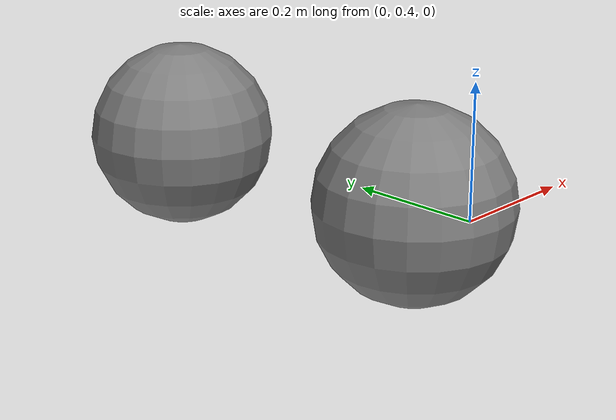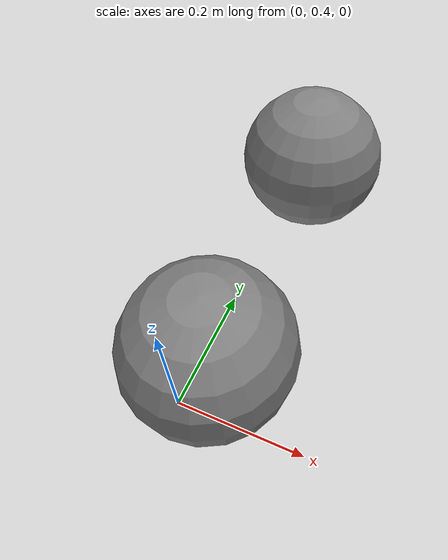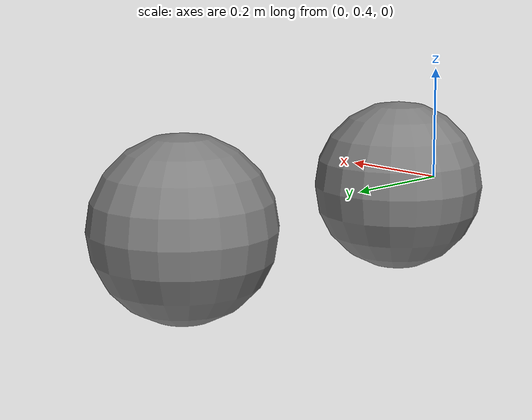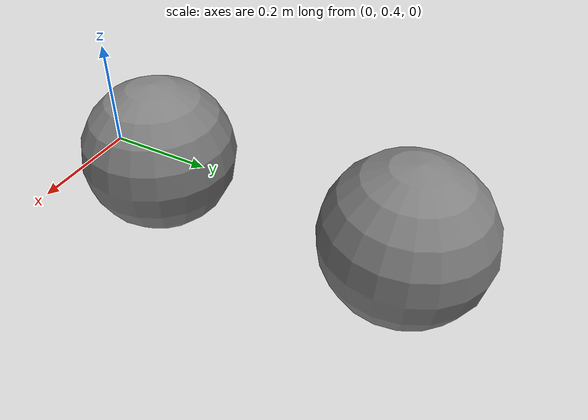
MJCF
<mujoco model="pendulum">
  <compiler inertiafromgeom="true"/>
  <option gravity="0 0 -9.81" timestep="0.02"/>
	<default>
		<geom contype="0" conaffinity="0"/>
  </default>
  <custom>
    <!-- springy physics parameters -->
    <numeric data="0.0" name="ang_damping"/>
    <numeric data="0.0" name="constraint_limit_stiffness"/>
    <numeric data="800000.0" name="constraint_stiffness"/>
    <numeric data="0.0" name="constraint_ang_damping"/>
    <numeric data="200.0" name="constraint_vel_damping"/>
  </custom>
  <worldbody>
    <body name="body1" pos="0 0 0">
      <joint axis="1 0 0" name="hinge1" pos="0 0 0" type="hinge"/>
      <geom name="sphere1" pos="0 0.5 0" size=".15" mass="1" type="sphere"/>
      <body name="body2" pos="0 0.5 0">
        <joint axis="1 0 0" name="hinge2" pos="0 0 0" type="hinge"/>
        <geom name="sphere2" pos="0 0.5 0" size=".15" mass="1" type="sphere"/>
      </body>
    </body>
  </worldbody>
  <actuator>
    <motor ctrllimited="true" ctrlrange="-100.0 100.0" joint="hinge2" gear="150 0 0 0 0 0"/>
  </actuator>
</mujoco>
